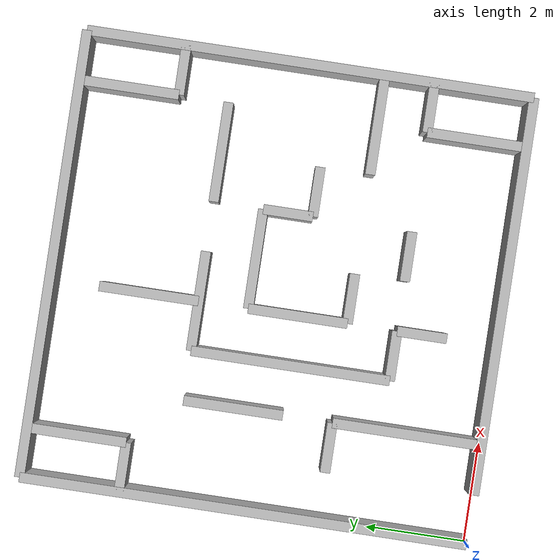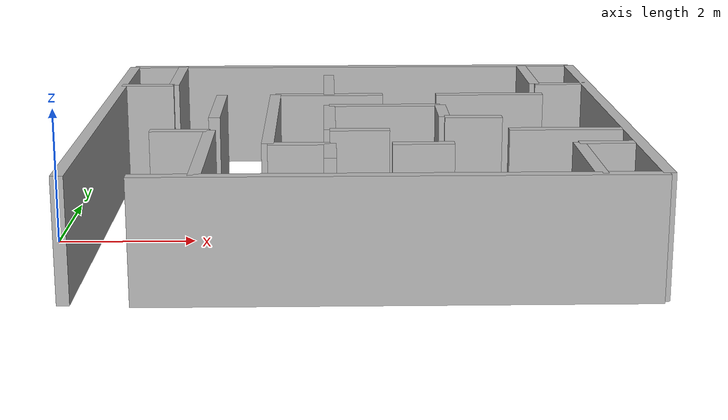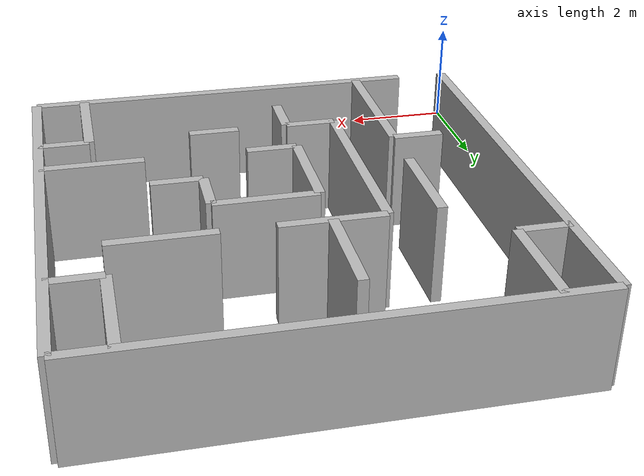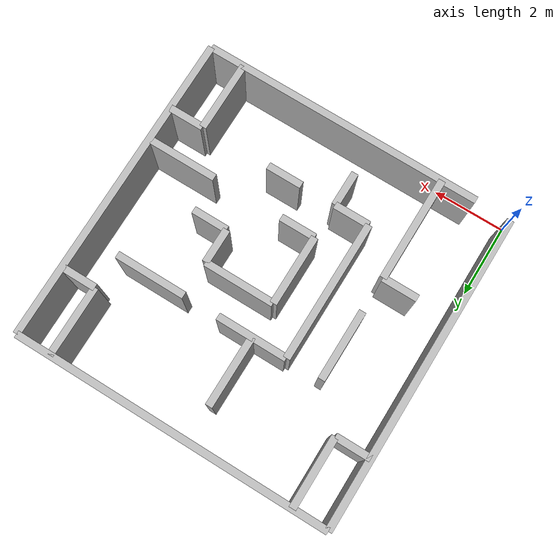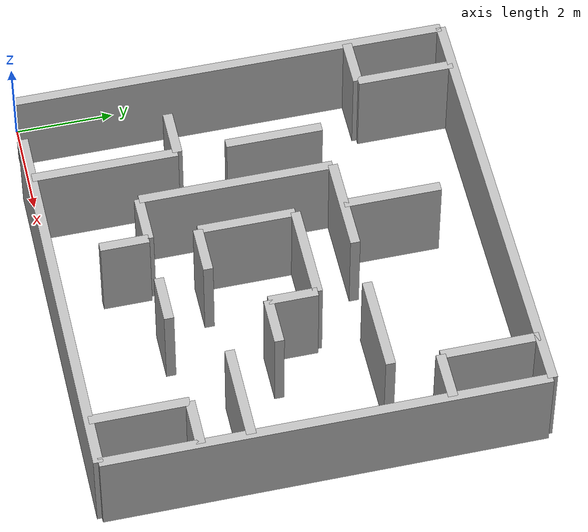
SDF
<sdf version="1.4">
 <world name="default">
  <light name="sun" type="directional">
   <cast_shadows>0</cast_shadows>
   <pose>0 0 30 0 -0 0</pose>
   <diffuse>0.9 0.9 0.9 1</diffuse>
   <specular>0.1 0.1 0.1 1</specular>
   <attenuation>
    <range>20</range>
    <constant>0.9</constant>
    <linear>0.01</linear>
    <quadratic>0.001</quadratic>
   </attenuation>
   <direction>0 0 -1</direction>
  </light>
  <physics type="ode">
   <max_step_size>0.001</max_step_size>
   <real_time_factor>1</real_time_factor>
   <real_time_update_rate>1000</real_time_update_rate>
   <gravity>0 0 -9.8</gravity>
  </physics>
  <scene><ambient>0.4 0.4 0.4 1</ambient><background>0.7 0.7 0.7 1</background><shadows>0</shadows></scene>
  <model name="wall 1">
   <static>1</static>
   <link name="link">
    <collision name="collision"><geometry><box><size>0.2 9 2</size></box></geometry></collision>
    <visual name="visual"><geometry><box><size>0.2 9 2</size></box></geometry></visual>
    <velocity_decay><linear>0</linear><angular>0</angular></velocity_decay>
   </link>
   <pose>0 4.5 0 0 -0 0</pose>
  </model>
  <model name="wall 2">
   <static>1</static>
   <link name="link">
    <collision name="collision"><geometry><box><size>9 0.2 2</size></box></geometry></collision>
    <visual name="visual"><geometry><box><size>9 0.2 2</size></box></geometry></visual>
    <velocity_decay><linear>0</linear><angular>0</angular></velocity_decay>
   </link>
   <pose>4.5 9 0 0 -0 0</pose>
  </model>
  <model name="wall 3">
   <static>1</static>
   <link name="link">
    <collision name="collision"><geometry><box><size>0.2 9 2</size></box></geometry></collision>
    <visual name="visual"><geometry><box><size>0.2 9 2</size></box></geometry></visual>
    <velocity_decay><linear>0</linear><angular>0</angular></velocity_decay>
   </link>
   <pose>9 4.5 0 0 -0 0</pose>
  </model>
  <model name="wall 4">
   <static>1</static>
   <link name="link">
    <collision name="collision"><geometry><box><size>8 0.2 2</size></box></geometry></collision>
    <visual name="visual"><geometry><box><size>8 0.2 2</size></box></geometry></visual>
    <velocity_decay><linear>0</linear><angular>0</angular></velocity_decay>
   </link>
   <pose>5 0 0 0 -0 0</pose>
  </model>
  <model name="wall 5">
   <static>1</static>
   <link name="link">
    <collision name="collision"><geometry><box><size>0.2 3 2</size></box></geometry></collision>
    <visual name="visual"><geometry><box><size>0.2 3 2</size></box></geometry></visual>
    <velocity_decay><linear>0</linear><angular>0</angular></velocity_decay>
   </link>
   <pose>2 1.5 0 0 -0 0</pose>
  </model>
  <model name="wall 6">
   <static>1</static>
   <link name="link">
    <collision name="collision"><geometry><box><size>0.2 4 2</size></box></geometry></collision>
    <visual name="visual"><geometry><box><size>0.2 4 2</size></box></geometry></visual>
    <velocity_decay><linear>0</linear><angular>0</angular></velocity_decay>
   </link>
   <pose>3 4 0 0 -0 0</pose>
  </model>
  <model name="wall 7">
   <static>1</static>
   <link name="link">
    <collision name="collision"><geometry><box><size>0.2 2 2</size></box></geometry></collision>
    <visual name="visual"><geometry><box><size>0.2 2 2</size></box></geometry></visual>
    <velocity_decay><linear>0</linear><angular>0</angular></velocity_decay>
   </link>
   <pose>4 4 0 0 -0 0</pose>
  </model>
  <model name="wall 8">
   <static>1</static>
   <link name="link">
    <collision name="collision"><geometry><box><size>0.2 1 2</size></box></geometry></collision>
    <visual name="visual"><geometry><box><size>0.2 1 2</size></box></geometry></visual>
    <velocity_decay><linear>0</linear><angular>0</angular></velocity_decay>
   </link>
   <pose>6 4.5 0 0 -0 0</pose>
  </model>
  <model name="wall 9">
   <static>1</static>
   <link name="link">
    <collision name="collision"><geometry><box><size>0.2 2 2</size></box></geometry></collision>
    <visual name="visual"><geometry><box><size>0.2 2 2</size></box></geometry></visual>
    <velocity_decay><linear>0</linear><angular>0</angular></velocity_decay>
   </link>
   <pose>8 1 0 0 -0 0</pose>
  </model>
  <model name="wall 10">
   <static>1</static>
   <link name="link">
    <collision name="collision"><geometry><box><size>0.2 2 2</size></box></geometry></collision>
    <visual name="visual"><geometry><box><size>0.2 2 2</size></box></geometry></visual>
    <velocity_decay><linear>0</linear><angular>0</angular></velocity_decay>
   </link>
   <pose>4 7 0 0 -0 0</pose>
  </model>
  <model name="wall 11">
   <static>1</static>
   <link name="link">
    <collision name="collision"><geometry><box><size>0.2 2 2</size></box></geometry></collision>
    <visual name="visual"><geometry><box><size>0.2 2 2</size></box></geometry></visual>
    <velocity_decay><linear>0</linear><angular>0</angular></velocity_decay>
   </link>
   <pose>1 8 0 0 -0 0</pose>
  </model>
  <model name="wall 12">
   <static>1</static>
   <link name="link">
    <collision name="collision"><geometry><box><size>0.2 2 2</size></box></geometry></collision>
    <visual name="visual"><geometry><box><size>0.2 2 2</size></box></geometry></visual>
    <velocity_decay><linear>0</linear><angular>0</angular></velocity_decay>
   </link>
   <pose>8 8 0 0 -0 0</pose>
  </model>
  <model name="wall 13">
   <static>1</static>
   <link name="link">
    <collision name="collision"><geometry><box><size>0.2 1 2</size></box></geometry></collision>
    <visual name="visual"><geometry><box><size>0.2 1 2</size></box></geometry></visual>
    <velocity_decay><linear>0</linear><angular>0</angular></velocity_decay>
   </link>
   <pose>4 1.5 0 0 -0 0</pose>
  </model>
  <model name="wall 14">
   <static>1</static>
   <link name="link">
    <collision name="collision"><geometry><box><size>0.2 2 2</size></box></geometry></collision>
    <visual name="visual"><geometry><box><size>0.2 2 2</size></box></geometry></visual>
    <velocity_decay><linear>0</linear><angular>0</angular></velocity_decay>
   </link>
   <pose>2 5 0 0 -0 0</pose>
  </model>
  <model name="wall 15">
   <static>1</static>
   <link name="link">
    <collision name="collision"><geometry><box><size>1 0.2 2</size></box></geometry></collision>
    <visual name="visual"><geometry><box><size>1 0.2 2</size></box></geometry></visual>
    <velocity_decay><linear>0</linear><angular>0</angular></velocity_decay>
   </link>
   <pose>0.5 7 0 0 -0 0</pose>
  </model>
  <model name="wall 16">
   <static>1</static>
   <link name="link">
    <collision name="collision"><geometry><box><size>2 0.2 2</size></box></geometry></collision>
    <visual name="visual"><geometry><box><size>2 0.2 2</size></box></geometry></visual>
    <velocity_decay><linear>0</linear><angular>0</angular></velocity_decay>
   </link>
   <pose>4 6 0 0 -0 0</pose>
  </model>
  <model name="wall 17">
   <static>1</static>
   <link name="link">
    <collision name="collision"><geometry><box><size>2 0.2 2</size></box></geometry></collision>
    <visual name="visual"><geometry><box><size>2 0.2 2</size></box></geometry></visual>
    <velocity_decay><linear>0</linear><angular>0</angular></velocity_decay>
   </link>
   <pose>7 6 0 0 -0 0</pose>
  </model>
  <model name="wall 18">
   <static>1</static>
   <link name="link">
    <collision name="collision"><geometry><box><size>2 0.2 2</size></box></geometry></collision>
    <visual name="visual"><geometry><box><size>2 0.2 2</size></box></geometry></visual>
    <velocity_decay><linear>0</linear><angular>0</angular></velocity_decay>
   </link>
   <pose>5 5 0 0 -0 0</pose>
  </model>
  <model name="wall 19">
   <static>1</static>
   <link name="link">
    <collision name="collision"><geometry><box><size>1 0.2 2</size></box></geometry></collision>
    <visual name="visual"><geometry><box><size>1 0.2 2</size></box></geometry></visual>
    <velocity_decay><linear>0</linear><angular>0</angular></velocity_decay>
   </link>
   <pose>4.5 3 0 0 -0 0</pose>
  </model>
  <model name="wall 20">
   <static>1</static>
   <link name="link">
    <collision name="collision"><geometry><box><size>1 0.2 2</size></box></geometry></collision>
    <visual name="visual"><geometry><box><size>1 0.2 2</size></box></geometry></visual>
    <velocity_decay><linear>0</linear><angular>0</angular></velocity_decay>
   </link>
   <pose>3.5 2 0 0 -0 0</pose>
  </model>
  <model name="wall 21">
   <static>1</static>
   <link name="link">
    <collision name="collision"><geometry><box><size>1 0.2 2</size></box></geometry></collision>
    <visual name="visual"><geometry><box><size>1 0.2 2</size></box></geometry></visual>
    <velocity_decay><linear>0</linear><angular>0</angular></velocity_decay>
   </link>
   <pose>5.5 2 0 0 -0 0</pose>
  </model>
  <model name="wall 22">
   <static>1</static>
   <link name="link">
    <collision name="collision"><geometry><box><size>2 0.2 2</size></box></geometry></collision>
    <visual name="visual"><geometry><box><size>2 0.2 2</size></box></geometry></visual>
    <velocity_decay><linear>0</linear><angular>0</angular></velocity_decay>
   </link>
   <pose>8 3 0 0 -0 0</pose>
  </model>
  <model name="wall 23">
   <static>1</static>
   <link name="link">
    <collision name="collision"><geometry><box><size>1 0.2 2</size></box></geometry></collision>
    <visual name="visual"><geometry><box><size>1 0.2 2</size></box></geometry></visual>
    <velocity_decay><linear>0</linear><angular>0</angular></velocity_decay>
   </link>
   <pose>8.5 7 0 0 -0 0</pose>
  </model>
  <model name="wall 24">
   <static>1</static>
   <link name="link">
    <collision name="collision"><geometry><box><size>1 0.2 2</size></box></geometry></collision>
    <visual name="visual"><geometry><box><size>1 0.2 2</size></box></geometry></visual>
    <velocity_decay><linear>0</linear><angular>0</angular></velocity_decay>
   </link>
   <pose>8.5 2 0 0 -0 0</pose>
  </model>
  <model name="wall 25">
   <static>1</static>
   <link name="link">
    <collision name="collision"><geometry><box><size>1 0.2 2</size></box></geometry></collision>
    <visual name="visual"><geometry><box><size>1 0.2 2</size></box></geometry></visual>
    <velocity_decay><linear>0</linear><angular>0</angular></velocity_decay>
   </link>
   <pose>1.5 3 0 0 -0 0</pose>
  </model>
  <model name="wall 26">
   <static>1</static>
   <link name="link">
    <collision name="collision"><geometry><box><size>1 0.2 2</size></box></geometry></collision>
    <visual name="visual"><geometry><box><size>1 0.2 2</size></box></geometry></visual>
    <velocity_decay><linear>0</linear><angular>0</angular></velocity_decay>
   </link>
   <pose>6.5 4 0 0 -0 0</pose>
  </model>
 </world>
</sdf>
